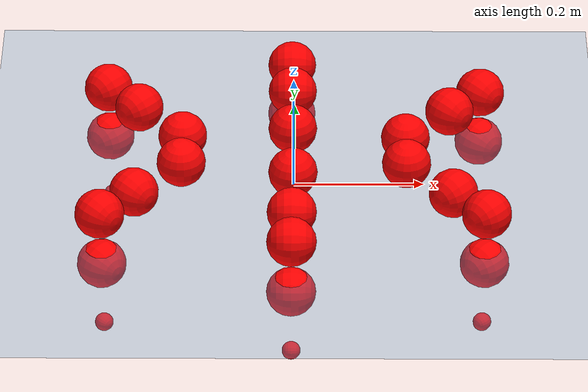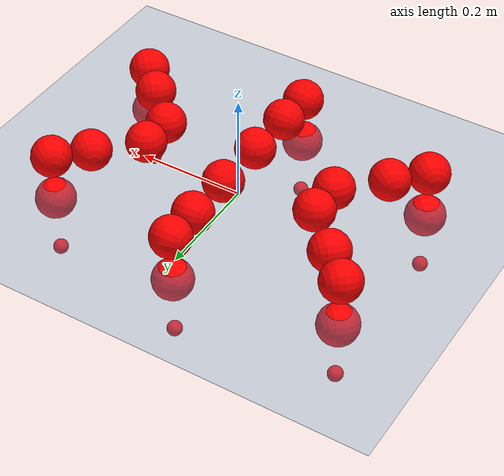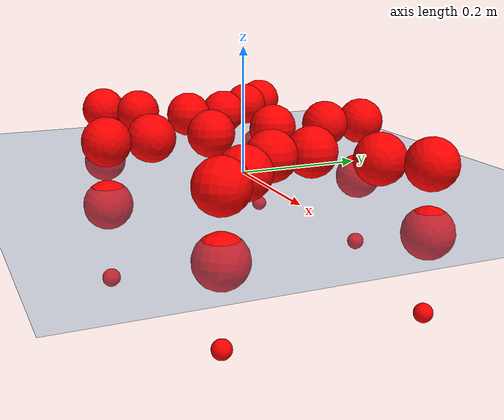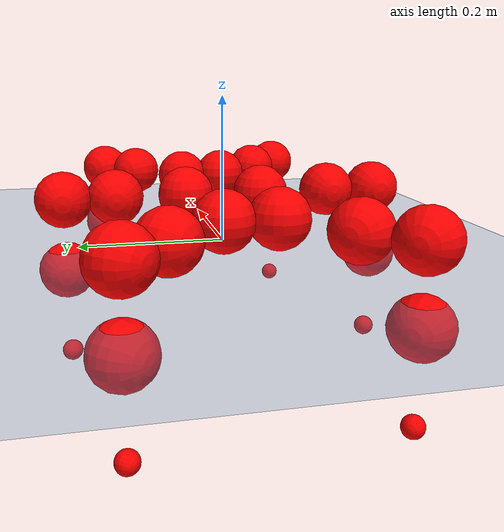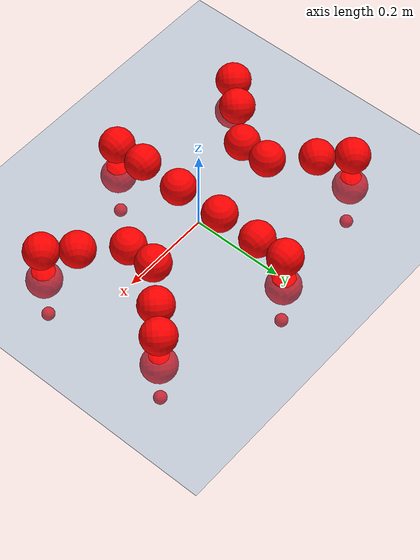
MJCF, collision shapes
<mujoco model="Golem">
  <compiler angle="radian" assetdir="assets" balanceinertia="true" inertiafromgeom="false"/>

  <option timestep="0.005" density="1.2" viscosity="2e-05"/>

  <size nkey="1"/>

  <visual>
    <quality shadowsize="8192"/>
    <map shadowclip="0.5"/>
  </visual>

  <default>
    <default class="/">
      <joint armature="0.01" damping="0.01" frictionloss="0.01"/>
      <geom contype="0" conaffinity="0" group="1" solref="-1000 -80"/>
      <site size="0.01 0.005 0.005" group="5"/>
      <general forcelimited="true" biastype="affine" gainprm="25" biasprm="0 -25 -0.5"/>
      <default class="visual">
        <geom type="mesh" group="2"/>
      </default>
      <default class="collision">
        <geom group="3"/>
      </default>
      <default class="foot">
        <geom size="0.01 0 0" condim="6" group="4" priority="1" solimp="0.015 1 0.01"/>
      </default>
      <default class="reward_collision_sphere">
        <geom group="5" rgba="1 0 0 1"/>
      </default>
    </default>
  </default>

  <asset>
    <texture type="skybox" colorspace="auto" name="//unnamed_texture_0" builtin="gradient" rgb1="0.95 0.95 0.95" rgb2="0.95 0.95 0.95" width="100" height="600"/>
    <texture type="2d" colorspace="auto" name="texplane" builtin="checker" rgb1="0.345 0.575 0.748" rgb2="0.345 0.575 0.748" markrgb="1 1 1" width="512" height="512"/>
    <material name="MatPlane" class="/" texture="texplane" texuniform="true" texrepeat="2 2" specular="0.9"/>
    <mesh name="body" class="/" file="body.stl" scale="0.001 0.001 0.001"/>
    <mesh name="coxa" class="/" file="coxa.stl" scale="0.001 0.001 0.001"/>
    <mesh name="femur" class="/" file="femur.stl" scale="0.001 0.001 0.001"/>
    <mesh name="tibia" class="/" file="tibia.stl" scale="0.001 0.001 0.001"/>
    <mesh name="tarsus" class="/" file="tarsus.stl" scale="0.001 0.001 0.001"/>
  </asset>

  <worldbody>
    <geom name="floor" class="/" size="100 100 0.125" type="plane" group="0" material="MatPlane"/>
    <light name="toplight_shadow" class="/" pos="0 0 5" dir="0.0990148 0.0990148 -0.990148" type="directional" ambient="0.04 0.04 0.04" diffuse="0.55 0.55 0.55" specular="0.12 0.12 0.12"/>
    <light name="toplight_fill" class="/" pos="0 0 5" dir="0.0990148 0.0990148 -0.990148" type="directional" castshadow="false" ambient="0.04 0.04 0.04" diffuse="0.3 0.3 0.3" specular="0.08 0.08 0.08"/>
    <body name="trunk" pos="-0.000592986 0.000317722 -0.000890355" quat="1 -1.94593e-06 6.54716e-05 -4.80167e-05">
      <inertial pos="0.000948257 -0.000958677 -0.00489594" quat="1 6.57061e-05 5.33234e-05 -7.16499e-05" mass="3.01757" diaginertia="0.0158681 0.0011876 0.0131448"/>
      <joint name="//unnamed_joint_0" type="free"/>
      <geom name="//unnamed_geom_1" class="/" pos="0 0 0.067763" quat="1 0 0 0" type="mesh" rgba="0.9 0.9 0.9 1" mesh="body"/>
      <site name="imu" class="/" pos="0.140636 0.00401964 0.104466" size="0.00935651"/>
      <camera name="track" class="/" pos="0 -1.30726 0" quat="0.707107 0.707107 0 0" mode="trackcom"/>
      <camera name="ego_camera" class="/" pos="0.142289 0 0.10588" quat="-0.5 -0.5 0.5 0.5"/>
      <body name="coxa_RR" pos="-0.194648 -0.0551976 0.069043" quat="0.382697 -6.14518e-05 -5.78623e-05 -0.923874">
        <inertial pos="-0.000165651 -0.000798359 0.00123982" quat="0.99999 -0.0023385 -0.00354371 0.00162594" mass="0.163436" diaginertia="0.0157067 0.00120259 0.0133329"/>
        <joint name="coxa_joint_RR" class="/" pos="0 0 0" axis="0.00162845 -0.00149241 -0.999998" range="-3.14744 3.13814" armature="0.00936859" damping="0.00440542" frictionloss="0.00913034"/>
        <geom name="//unnamed_geom_2" class="/" type="mesh" rgba="0.2 0.2 0.2 1" mesh="coxa"/>
        <geom name="//unnamed_geom_3" class="reward_collision_sphere" size="0.0374261" pos="-0.0328358 0 0"/>
        <body name="femur_RR" pos="0.0664704 0.00102376 -0.00119669" quat="0.499872 -0.500098 0.500049 0.499981">
          <inertial pos="0.000237629 -0.000302788 -0.000171665" quat="1 3.94681e-05 0.000299146 -8.3989e-05" mass="0.16195" diaginertia="0.015524 0.00117892 0.0131464"/>
          <joint name="femur_joint_RR" class="/" pos="0 0 0" axis="5.59165e-05 0.000548411 -1" range="-3.12367 3.12032" armature="0.00967078" damping="0.00133518" frictionloss="0.0093229"/>
          <geom name="//unnamed_geom_4" class="/" type="mesh" rgba="0.9 0.9 0.9 1" mesh="femur"/>
          <geom name="//unnamed_geom_5" class="reward_collision_sphere" size="0.0374261"/>
          <body name="tibia_RR" pos="0.000240646 -0.0716749 0.00138873" quat="6.96968e-05 1 5.09561e-05 7.29597e-05">
            <inertial pos="-0.00089049 6.92281e-05 0.000176744" quat="0.99999 0.00423136 -0.00149988 -0.000903506" mass="0.162798" diaginertia="0.0155601 0.00117381 0.0133192"/>
            <joint name="tibia_joint_RR" class="/" pos="0 0 0" axis="-0.000707685 0.00284614 0.999996" range="-3.12192 3.11355" armature="0.00910948" damping="0.00067298" frictionloss="0.00958966"/>
            <geom name="//unnamed_geom_6" class="/" type="mesh" rgba="0.2 0.2 0.2 1" mesh="tibia"/>
            <geom name="//unnamed_geom_7" class="reward_collision_sphere" size="0.0374261"/>
            <body name="tarsus_RR" pos="0.0965348 0.000175349 -0.000736535" quat="1 2.7188e-05 -1.51716e-05 3.00769e-05">
              <inertial pos="0.066819 0.00203587 5.99972e-05" quat="0.499905 0.501551 0.502044 0.496481" mass="0.163778" diaginertia="0.0159762 0.00119717 0.0133868"/>
              <joint name="tarsus_joint_RR" class="/" pos="0 0 0" axis="-0.00440057 -0.00800241 0.999958" range="-3.12185 3.14066" armature="0.00913406" damping="0.0437228" frictionloss="0.00893172"/>
              <geom name="//unnamed_geom_8" class="/" type="mesh" rgba="0.9 0.9 0.9 1" mesh="tarsus"/>
              <geom name="foot_1" class="foot" size="0.00901499" pos="0.122587 0 0" quat="0 -0.707107 0 0.707107"/>
              <geom name="//unnamed_geom_10" class="reward_collision_sphere" size="0.0374261"/>
              <geom name="//unnamed_geom_11" class="reward_collision_sphere" size="0.0140348" pos="0.117662 0 0"/>
              <site name="foot_1" class="foot" pos="0.122587 0 0" quat="0 -0.707107 0 0.707107" size="0.00935651"/>
            </body>
          </body>
        </body>
      </body>
      <body name="coxa_RM" pos="-0.000811488 -0.0871686 0.068138" quat="0.707084 8.95518e-05 6.59303e-05 -0.70713">
        <inertial pos="-9.8176e-05 -0.000771034 0.000185814" quat="0.999999 0.000105589 -0.00081943 -0.00126299" mass="0.165658" diaginertia="0.0157234 0.00119929 0.0133242"/>
        <joint name="coxa_joint_RM" class="/" pos="0 0 0" axis="-0.00276124 -0.00282928 -0.999992" range="-3.14577 3.13931" armature="0.00924222" damping="0.00990332" frictionloss="0.00884061"/>
        <geom name="//unnamed_geom_12" class="/" type="mesh" rgba="0.2 0.2 0.2 1" mesh="coxa"/>
        <geom name="//unnamed_geom_13" class="reward_collision_sphere" size="0.0374261" pos="-0.0328358 0 0"/>
        <body name="femur_RM" pos="0.0635463 -0.0013805 0.000516845" quat="0.499908 -0.500254 0.500083 0.499755">
          <inertial pos="-0.00034678 0.00064112 -0.000430368" quat="0.999999 -0.000972082 -0.000291761 -0.000581341" mass="0.16328" diaginertia="0.015588 0.00119405 0.0132397"/>
          <joint name="femur_joint_RM" class="/" pos="0 0 0" axis="-0.000164974 -0.00150188 -0.999999" range="-3.13528 3.1565" armature="0.00922082" damping="0.00119412" frictionloss="0.00950291"/>
          <geom name="//unnamed_geom_14" class="/" type="mesh" rgba="0.9 0.9 0.9 1" mesh="femur"/>
          <geom name="//unnamed_geom_15" class="reward_collision_sphere" size="0.0374261"/>
          <body name="tibia_RM" pos="0.000197323 -0.0692032 -2.62918e-05" quat="1.68211e-06 1 1.22087e-06 1.44821e-06">
            <inertial pos="-0.000850144 -0.00140786 -0.000567129" quat="0.99999 0.00112565 -0.00208916 -0.0038349" mass="0.1642" diaginertia="0.0157937 0.00119409 0.013197"/>
            <joint name="tibia_joint_RM" class="/" pos="0 0 0" axis="-4.66319e-05 -0.00177817 0.999998" range="-3.14466 3.12044" armature="0.00894286" damping="0.00715971" frictionloss="0.00893368"/>
            <geom name="//unnamed_geom_16" class="/" type="mesh" rgba="0.2 0.2 0.2 1" mesh="tibia"/>
            <geom name="//unnamed_geom_17" class="reward_collision_sphere" size="0.0374261"/>
            <body name="tarsus_RM" pos="0.0967199 0.000889515 0.000518292" quat="1 -6.0562e-05 7.89818e-06 2.45451e-05">
              <inertial pos="0.0661132 -0.000445777 -0.000226791" quat="0.499799 0.499431 0.499937 0.500833" mass="0.162151" diaginertia="0.0154277 0.00117401 0.0131971"/>
              <joint name="tarsus_joint_RM" class="/" pos="0 0 0" axis="0.00118781 0.00153957 0.999998" range="-3.13778 3.14456" armature="0.0091776" damping="0.00750276" frictionloss="0.00951006"/>
              <geom name="//unnamed_geom_18" class="/" type="mesh" rgba="0.9 0.9 0.9 1" mesh="tarsus"/>
              <geom name="foot_2" class="foot" size="0.00958404" pos="0.122587 0 0" quat="0 -0.707107 0 0.707107"/>
              <geom name="//unnamed_geom_20" class="reward_collision_sphere" size="0.0374261"/>
              <geom name="//unnamed_geom_21" class="reward_collision_sphere" size="0.0140348" pos="0.117662 0 0"/>
              <site name="foot_2" class="foot" pos="0.122587 0 0" quat="0 -0.707107 0 0.707107" size="0.00935651"/>
            </body>
          </body>
        </body>
      </body>
      <body name="coxa_RF" pos="0.195619 -0.0553463 0.0678508" quat="0.923798 -5.39496e-05 7.22882e-06 -0.38288">
        <inertial pos="0.000305338 -0.000250798 -7.86792e-05" quat="0.999998 -0.00116536 -0.000805357 -0.00167848" mass="0.163666" diaginertia="0.0158389 0.00119881 0.0132707"/>
        <joint name="coxa_joint_RF" class="/" pos="0 0 0" axis="0.000863564 0.000289473 -1" stiffness="6.17325e-05" range="-3.1209 3.13069" armature="0.00979156" damping="0.0076356" frictionloss="0.00929933"/>
        <geom name="//unnamed_geom_22" class="/" type="mesh" rgba="0.2 0.2 0.2 1" mesh="coxa"/>
        <geom name="//unnamed_geom_23" class="reward_collision_sphere" size="0.0374261" pos="-0.0328358 0 0"/>
        <body name="femur_RF" pos="0.0657388 -0.000292323 -0.00116519" quat="0.500027 -0.499978 0.500024 0.499971">
          <inertial pos="-0.000213726 -0.000724077 0.000449053" quat="1 -3.51459e-05 -0.000150131 -2.05438e-05" mass="0.164337" diaginertia="0.0157762 0.0012031 0.0133035"/>
          <joint name="femur_joint_RF" class="/" pos="0 0 0" axis="0.000352261 0.000468165 -1" range="-3.13729 3.13362" armature="0.00899228" damping="0" frictionloss="0.00912557"/>
          <geom name="//unnamed_geom_24" class="/" type="mesh" rgba="0.9 0.9 0.9 1" mesh="femur"/>
          <geom name="//unnamed_geom_25" class="reward_collision_sphere" size="0.0374261"/>
          <body name="tibia_RF" pos="-0.000507249 -0.0701283 -0.00125532" quat="-0.000106762 1 -2.355e-05 -1.69096e-05">
            <inertial pos="-0.000357055 -0.000447773 -0.000486127" quat="1 4.95625e-05 0.000110341 0.000263958" mass="0.163943" diaginertia="0.0159699 0.00120933 0.0132794"/>
            <joint name="tibia_joint_RF" class="/" pos="0 0 0" axis="-0.000524365 -6.34293e-05 1" range="-3.13329 3.13029" armature="0.00904375" damping="0.0131619" frictionloss="0.0094841"/>
            <geom name="//unnamed_geom_26" class="/" type="mesh" rgba="0.2 0.2 0.2 1" mesh="tibia"/>
            <geom name="//unnamed_geom_27" class="reward_collision_sphere" size="0.0374261"/>
            <body name="tarsus_RF" pos="0.0953072 0.000239753 0.00109392" quat="1 -0.000176333 0.000130597 -0.000282507">
              <inertial pos="0.0657038 -0.000497907 -0.000275702" quat="0.500495 0.502344 0.501824 0.495307" mass="0.164857" diaginertia="0.0158325 0.00118052 0.0133199"/>
              <joint name="tarsus_joint_RF" class="/" pos="0 0 0" axis="-0.00112915 -0.000169698 0.999999" range="-3.12648 3.13286" armature="0.00997081" damping="0" frictionloss="0.00931553"/>
              <geom name="//unnamed_geom_28" class="/" type="mesh" rgba="0.9 0.9 0.9 1" mesh="tarsus"/>
              <geom name="foot_3" class="foot" size="0.00944971" pos="0.122587 0 0" quat="0 -0.707107 0 0.707107"/>
              <geom name="//unnamed_geom_30" class="reward_collision_sphere" size="0.0374261"/>
              <geom name="//unnamed_geom_31" class="reward_collision_sphere" size="0.0140348" pos="0.117662 0 0"/>
              <site name="foot_3" class="foot" pos="0.122587 0 0" quat="0 -0.707107 0 0.707107" size="0.00935651"/>
            </body>
          </body>
        </body>
      </body>
      <body name="coxa_LR" pos="-0.194049 0.0568954 0.0688715" quat="0.382914 0.000239475 0.000163517 0.923784">
        <inertial pos="0.000287067 -0.0011865 5.6398e-05" quat="0.999999 -0.00096238 0.00105111 0.000604603" mass="0.162739" diaginertia="0.0156443 0.00118924 0.0131267"/>
        <joint name="coxa_joint_LR" class="/" pos="0 0 0" axis="-0.00354562 -0.00111904 -0.999993" range="-3.12274 3.15173" armature="0.00916706" damping="0.00765404" frictionloss="0.00912372"/>
        <geom name="//unnamed_geom_32" class="/" type="mesh" rgba="0.2 0.2 0.2 1" mesh="coxa"/>
        <geom name="//unnamed_geom_33" class="reward_collision_sphere" size="0.0374261" pos="-0.0328358 0 0"/>
        <body name="femur_LR" pos="0.0676018 -0.00184142 -0.00126507" quat="0.500029 -0.500176 0.499661 0.500135">
          <inertial pos="-0.000331702 1.96535e-05 0.000174175" quat="0.999995 -0.000336793 0.00308897 0.00101214" mass="0.164619" diaginertia="0.0155748 0.00118483 0.0134184"/>
          <joint name="femur_joint_LR" class="/" pos="0 0 0" axis="0.000816666 0.00266307 0.999996" range="-3.11731 3.14492" armature="0.00897802" damping="0.00822179" frictionloss="0.00919342"/>
          <geom name="//unnamed_geom_34" class="/" type="mesh" rgba="0.9 0.9 0.9 1" mesh="femur"/>
          <geom name="//unnamed_geom_35" class="reward_collision_sphere" size="0.0374261"/>
          <body name="tibia_LR" pos="0.000991012 -0.0715939 -0.00133383" quat="-0.000265489 1 -0.000212624 -0.000452617">
            <inertial pos="-0.000273862 -0.000726039 -0.000229804" quat="0.99999 -0.0012638 0.00161977 0.00398025" mass="0.163186" diaginertia="0.0155116 0.00117737 0.0132421"/>
            <joint name="tibia_joint_LR" class="/" pos="0 0 0" axis="-0.000276291 0.00124798 -0.999999" range="-3.13325 3.12079" armature="0.00975081" damping="0" frictionloss="0.0089545"/>
            <geom name="//unnamed_geom_36" class="/" type="mesh" rgba="0.2 0.2 0.2 1" mesh="tibia"/>
            <geom name="//unnamed_geom_37" class="reward_collision_sphere" size="0.0374261"/>
            <body name="tarsus_LR" pos="0.0969366 0.000928575 0.000841575" quat="1 4.30278e-06 3.46414e-07 1.58172e-08">
              <inertial pos="0.0653986 0.000219997 -0.000183611" quat="0.503057 0.500077 0.497409 0.49944" mass="0.160963" diaginertia="0.0156168 0.00118369 0.0131981"/>
              <joint name="tarsus_joint_LR" class="/" pos="0 0 0" axis="0.00121024 0.0025971 -0.999996" range="-3.14091 3.13997" armature="0.00930663" damping="0.0287635" frictionloss="0.00922586"/>
              <geom name="//unnamed_geom_38" class="/" type="mesh" rgba="0.9 0.9 0.9 1" mesh="tarsus"/>
              <geom name="foot_4" class="foot" size="0.00937293" pos="0.122587 0 0" quat="0.707107 0 -0.707107 0"/>
              <geom name="//unnamed_geom_40" class="reward_collision_sphere" size="0.0374261"/>
              <geom name="//unnamed_geom_41" class="reward_collision_sphere" size="0.0140348" pos="0.117662 0 0"/>
              <site name="foot_4" class="foot" pos="0.122587 0 0" quat="0.707107 0 -0.707107 0" size="0.00935651"/>
            </body>
          </body>
        </body>
      </body>
      <body name="coxa_LM" pos="-0.00152815 0.0843605 0.0692489" quat="0.707478 -0.000201484 -0.000250924 0.706735">
        <inertial pos="0.000434358 2.86979e-05 0.00147953" quat="1 -1.19887e-05 -2.56557e-05 -6.5241e-05" mass="0.164859" diaginertia="0.0157594 0.00118494 0.0134073"/>
        <joint name="coxa_joint_LM" class="/" pos="0 0 0" axis="-0.000284949 -0.000382117 -1" range="-3.13866 3.1396" armature="0.00958024" damping="0.00508444" frictionloss="0.00973708"/>
        <geom name="//unnamed_geom_42" class="/" type="mesh" rgba="0.2 0.2 0.2 1" mesh="coxa"/>
        <geom name="//unnamed_geom_43" class="reward_collision_sphere" size="0.0374261" pos="-0.0328358 0 0"/>
        <body name="femur_LM" pos="0.0623196 0.000584165 -0.000421576" quat="0.500012 -0.500066 0.499965 0.499957">
          <inertial pos="-0.000366289 -0.00091969 0.000306145" quat="1 0.000125203 -4.24428e-05 -3.07153e-05" mass="0.163827" diaginertia="0.015553 0.00119515 0.0134148"/>
          <joint name="femur_joint_LM" class="/" pos="0 0 0" axis="0.000896991 0.00544956 0.999985" stiffness="0.000891572" range="-3.13085 3.14723" armature="0.00894135" damping="0.00569371" frictionloss="0.00900575"/>
          <geom name="//unnamed_geom_44" class="/" type="mesh" rgba="0.9 0.9 0.9 1" mesh="femur"/>
          <geom name="//unnamed_geom_45" class="reward_collision_sphere" size="0.0374261"/>
          <body name="tibia_LM" pos="0.000582975 -0.0682769 0.00122284" quat="1.77008e-06 1 -3.60672e-06 -9.58786e-06">
            <inertial pos="0.000874919 -0.00141546 0.00108864" quat="0.999984 0.000189468 0.00358615 -0.00433466" mass="0.162924" diaginertia="0.0158395 0.00118422 0.0133803"/>
            <joint name="tibia_joint_LM" class="/" pos="0 0 0" axis="0.00292534 -0.00128599 -0.999995" range="-3.13652 3.13286" armature="0.00925243" damping="0.0031163" frictionloss="0.00933868"/>
            <geom name="//unnamed_geom_46" class="/" type="mesh" rgba="0.2 0.2 0.2 1" mesh="tibia"/>
            <geom name="//unnamed_geom_47" class="reward_collision_sphere" size="0.0374261"/>
            <body name="tarsus_LM" pos="0.0962426 -0.000213193 -0.000715589" quat="1 0.000100248 -0.000109859 0.000114207">
              <inertial pos="0.0671969 0.00015507 4.42361e-05" quat="0.501519 0.496817 0.500254 0.501395" mass="0.164762" diaginertia="0.0157594 0.00120552 0.013524"/>
              <joint name="tarsus_joint_LM" class="/" pos="0 0 0" axis="9.15981e-05 0.000192347 -1" range="-3.13253 3.13488" armature="0.00961331" damping="0" frictionloss="0.00934805"/>
              <geom name="//unnamed_geom_48" class="/" type="mesh" rgba="0.9 0.9 0.9 1" mesh="tarsus"/>
              <geom name="foot_5" class="foot" size="0.00956077" pos="0.122587 0 0" quat="0.707107 0 -0.707107 0"/>
              <geom name="//unnamed_geom_50" class="reward_collision_sphere" size="0.0374261"/>
              <geom name="//unnamed_geom_51" class="reward_collision_sphere" size="0.0140348" pos="0.117662 0 0"/>
              <site name="foot_5" class="foot" pos="0.122587 0 0" quat="0.707107 0 -0.707107 0" size="0.00935651"/>
            </body>
          </body>
        </body>
      </body>
      <body name="coxa_LF" pos="0.194999 0.0543112 0.0677842" quat="0.923845 0.000144028 -2.70698e-05 0.382766">
        <inertial pos="-3.17987e-05 -0.000185105 -0.000398449" quat="0.999985 -0.0033876 -0.000938167 -0.00429216" mass="0.166346" diaginertia="0.0159728 0.0012082 0.0132302"/>
        <joint name="coxa_joint_LF" class="/" pos="0 0 0" axis="0.000187465 -7.19875e-05 -1" range="-3.13884 3.13999" armature="0.00927365" damping="0.00392334" frictionloss="0.00958757"/>
        <geom name="//unnamed_geom_52" class="/" type="mesh" rgba="0.2 0.2 0.2 1" mesh="coxa"/>
        <geom name="//unnamed_geom_53" class="reward_collision_sphere" size="0.0374261" pos="-0.0328358 0 0"/>
        <body name="femur_LF" pos="0.0648937 -0.000921231 -0.00138647" quat="0.500001 -0.500002 0.499991 0.500006">
          <inertial pos="0.000276598 0.00046413 0.000553926" quat="0.999998 0.000868234 -0.0011567 0.0012886" mass="0.162645" diaginertia="0.0157365 0.00119069 0.0132415"/>
          <joint name="femur_joint_LF" class="/" pos="0 0 0" axis="0.00480795 0.00568463 0.999972" range="-3.14066 3.16201" armature="0.00900474" damping="0" frictionloss="0.00922108"/>
          <geom name="//unnamed_geom_54" class="/" type="mesh" rgba="0.9 0.9 0.9 1" mesh="femur"/>
          <geom name="//unnamed_geom_55" class="reward_collision_sphere" size="0.0374261"/>
          <body name="tibia_LF" pos="0.000931552 -0.0700581 0.000351036" quat="1.31104e-05 1 8.61404e-05 0.000290344">
            <inertial pos="-0.000293191 3.40583e-05 0.000126161" quat="1 0.000241945 -0.000109019 -9.96444e-05" mass="0.164019" diaginertia="0.0157657 0.00118831 0.0132876"/>
            <joint name="tibia_joint_LF" class="/" pos="0 0 0" axis="-0.00434839 -0.000974453 -0.99999" range="-3.12768 3.12415" armature="0.00911649" damping="0.00333127" frictionloss="0.00928155"/>
            <geom name="//unnamed_geom_56" class="/" type="mesh" rgba="0.2 0.2 0.2 1" mesh="tibia"/>
            <geom name="//unnamed_geom_57" class="reward_collision_sphere" size="0.0374261"/>
            <body name="tarsus_LF" pos="0.0962873 -0.000152262 0.00080746" quat="1 0.000364557 -5.30485e-05 -7.21843e-05">
              <inertial pos="0.0668346 -0.000646031 -0.000413171" quat="0.499656 0.500042 0.500302 0.5" mass="0.163324" diaginertia="0.015789 0.00119938 0.0132141"/>
              <joint name="tarsus_joint_LF" class="/" pos="0 0 0" axis="-0.00659965 0.00171 -0.999977" stiffness="0.0255696" range="-3.14739 3.15027" armature="0.00929379" damping="0.00331487" frictionloss="0.00945913"/>
              <geom name="//unnamed_geom_58" class="/" type="mesh" rgba="0.9 0.9 0.9 1" mesh="tarsus"/>
              <geom name="foot_6" class="foot" size="0.00922392" pos="0.122587 0 0" quat="0.707107 0 -0.707107 0"/>
              <geom name="//unnamed_geom_60" class="reward_collision_sphere" size="0.0374261"/>
              <geom name="//unnamed_geom_61" class="reward_collision_sphere" size="0.0140348" pos="0.117662 0 0"/>
              <site name="foot_6" class="foot" pos="0.122587 0 0" quat="0.707107 0 -0.707107 0" size="0.00935651"/>
            </body>
          </body>
        </body>
      </body>
    </body>
  </worldbody>

  <contact>
    <pair class="/" geom1="floor" geom2="foot_1" name="//unnamed_contact_0"/>
    <pair class="/" geom1="floor" geom2="foot_2" name="//unnamed_contact_1"/>
    <pair class="/" geom1="floor" geom2="foot_3" name="//unnamed_contact_2"/>
    <pair class="/" geom1="floor" geom2="foot_4" name="//unnamed_contact_3"/>
    <pair class="/" geom1="floor" geom2="foot_5" name="//unnamed_contact_4"/>
    <pair class="/" geom1="floor" geom2="foot_6" name="//unnamed_contact_5"/>
  </contact>

  <actuator>
    <general name="coxa_joint_RR" class="/" joint="coxa_joint_RR" forcerange="-6.65296 6.65296" gainprm="22.7158" biasprm="0 -22.7158 -0.480026"/>
    <general name="femur_joint_RR" class="/" joint="femur_joint_RR" forcerange="-7.06201 7.06201" gainprm="22.7158" biasprm="0 -22.7158 -0.480026"/>
    <general name="tibia_joint_RR" class="/" joint="tibia_joint_RR" forcerange="-6.62788 6.62788" gainprm="22.7158" biasprm="0 -22.7158 -0.480026"/>
    <general name="tarsus_joint_RR" class="/" joint="tarsus_joint_RR" forcerange="-7.0428 7.0428" gainprm="22.7158" biasprm="0 -22.7158 -0.480026"/>
    <general name="coxa_joint_RM" class="/" joint="coxa_joint_RM" forcerange="-6.83143 6.83143" gainprm="22.7158" biasprm="0 -22.7158 -0.480026"/>
    <general name="femur_joint_RM" class="/" joint="femur_joint_RM" forcerange="-6.7578 6.7578" gainprm="22.7158" biasprm="0 -22.7158 -0.480026"/>
    <general name="tibia_joint_RM" class="/" joint="tibia_joint_RM" forcerange="-6.54592 6.54592" gainprm="22.7158" biasprm="0 -22.7158 -0.480026"/>
    <general name="tarsus_joint_RM" class="/" joint="tarsus_joint_RM" forcerange="-6.85167 6.85167" gainprm="22.7158" biasprm="0 -22.7158 -0.480026"/>
    <general name="coxa_joint_RF" class="/" joint="coxa_joint_RF" forcerange="-6.89462 6.89462" gainprm="22.7158" biasprm="0 -22.7158 -0.480026"/>
    <general name="femur_joint_RF" class="/" joint="femur_joint_RF" forcerange="-7.12096 7.12096" gainprm="22.7158" biasprm="0 -22.7158 -0.480026"/>
    <general name="tibia_joint_RF" class="/" joint="tibia_joint_RF" forcerange="-6.60342 6.60342" gainprm="22.7158" biasprm="0 -22.7158 -0.480026"/>
    <general name="tarsus_joint_RF" class="/" joint="tarsus_joint_RF" forcerange="-7.11038 7.11038" gainprm="22.7158" biasprm="0 -22.7158 -0.480026"/>
    <general name="coxa_joint_LR" class="/" joint="coxa_joint_LR" forcerange="-6.85972 6.85972" gainprm="22.7158" biasprm="0 -22.7158 -0.480026"/>
    <general name="femur_joint_LR" class="/" joint="femur_joint_LR" forcerange="-6.69795 6.69795" gainprm="22.7158" biasprm="0 -22.7158 -0.480026"/>
    <general name="tibia_joint_LR" class="/" joint="tibia_joint_LR" forcerange="-6.6031 6.6031" gainprm="22.7158" biasprm="0 -22.7158 -0.480026"/>
    <general name="tarsus_joint_LR" class="/" joint="tarsus_joint_LR" forcerange="-6.78102 6.78102" gainprm="22.7158" biasprm="0 -22.7158 -0.480026"/>
    <general name="coxa_joint_LM" class="/" joint="coxa_joint_LM" forcerange="-6.61 6.61" gainprm="22.7158" biasprm="0 -22.7158 -0.480026"/>
    <general name="femur_joint_LM" class="/" joint="femur_joint_LM" forcerange="-6.81227 6.81227" gainprm="22.7158" biasprm="0 -22.7158 -0.480026"/>
    <general name="tibia_joint_LM" class="/" joint="tibia_joint_LM" forcerange="-6.69112 6.69112" gainprm="22.7158" biasprm="0 -22.7158 -0.480026"/>
    <general name="tarsus_joint_LM" class="/" joint="tarsus_joint_LM" forcerange="-7.0011 7.0011" gainprm="22.7158" biasprm="0 -22.7158 -0.480026"/>
    <general name="coxa_joint_LF" class="/" joint="coxa_joint_LF" forcerange="-6.73035 6.73035" gainprm="22.7158" biasprm="0 -22.7158 -0.480026"/>
    <general name="femur_joint_LF" class="/" joint="femur_joint_LF" forcerange="-6.82236 6.82236" gainprm="22.7158" biasprm="0 -22.7158 -0.480026"/>
    <general name="tibia_joint_LF" class="/" joint="tibia_joint_LF" forcerange="-6.80705 6.80705" gainprm="22.7158" biasprm="0 -22.7158 -0.480026"/>
    <general name="tarsus_joint_LF" class="/" joint="tarsus_joint_LF" forcerange="-6.82311 6.82311" gainprm="22.7158" biasprm="0 -22.7158 -0.480026"/>
  </actuator>

  <sensor>
    <gyro site="imu" name="imu_angular_velocity"/>
    <velocimeter site="imu" name="imu_linear_velocity"/>
    <framelinvel objtype="site" objname="foot_1" name="foot_1_global_linear_velocity"/>
    <framelinvel objtype="site" objname="foot_2" name="foot_2_global_linear_velocity"/>
    <framelinvel objtype="site" objname="foot_3" name="foot_3_global_linear_velocity"/>
    <framelinvel objtype="site" objname="foot_4" name="foot_4_global_linear_velocity"/>
    <framelinvel objtype="site" objname="foot_5" name="foot_5_global_linear_velocity"/>
    <framelinvel objtype="site" objname="foot_6" name="foot_6_global_linear_velocity"/>
  </sensor>

  <keyframe>
    <key name="home" qpos="0 0 0.1457 1 0 0 0 0 0 0 0 0 0 0 0 0 0 0 0 0 0 0 0 0 0 0 0 0 0 0 0"/>
  </keyframe>
</mujoco>
